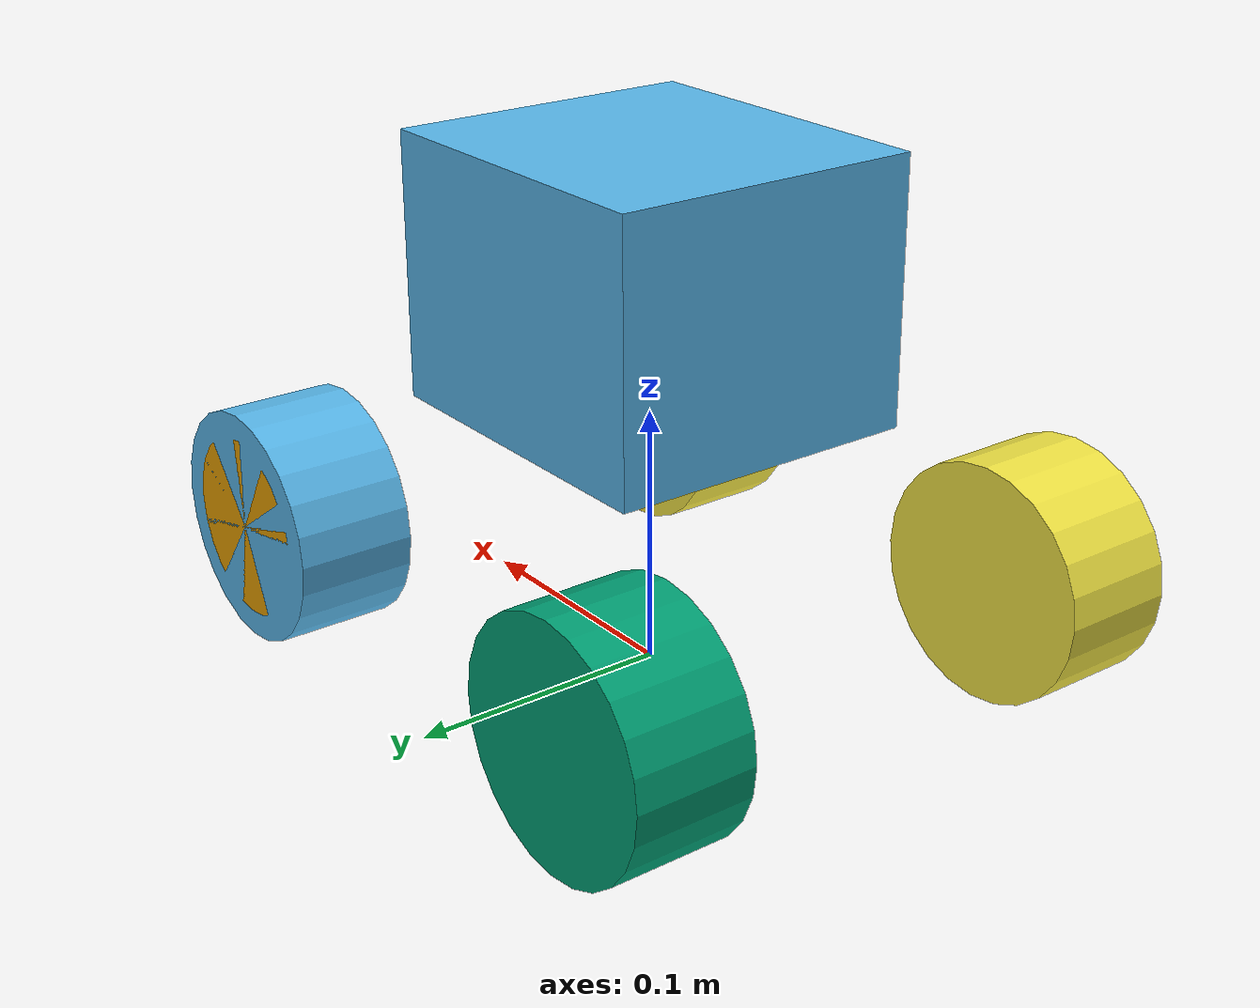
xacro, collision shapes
<?xml version="1.0"?>
<!--Auto: Zhui Li-->

<robot name="limo_ackerman" xmlns:xacro="http://www.ros.org/wiki/xacro">

    <!-- assoziiert mit anderen hergestellten Modellen -->
    <xacro:arg name="robot_namespace" default="/" />
    <xacro:include filename="$(find limo_gazebo_classic)/urdf/limo_anteil.xacro" />
    <xacro:include filename="$(find limo_gazebo_classic)/urdf/limo_steering_hinge.xacro" />

    <!-- definiert Value -->
    <xacro:property name="M_PI" value="3.14159"/>

    <xacro:property name="base_mass" value="2.1557"/>
    <xacro:property name="base_x_size" value="0.13" />
    <xacro:property name="base_y_size" value="0.12" />
    <xacro:property name="base_z_size" value="0.10" />

    <xacro:property name="wheelbase" value="0.2"/>
    <xacro:property name="track" value="0.14"/>
    <xacro:property name="wheel_vertical_offset" value="-0.100998" />

    <xacro:property name="wheel_mass" value="0.5" />
    <xacro:property name="wheel_length" value="0.045" />
    <xacro:property name="wheel_radius" value="0.045" />

    <!-- definieren die Macro-Function für die Rechnungen der Matrizen für Trägheitsmoment-->
    <!-- Kugel -->
    <xacro:macro name="sphere_inertial_matrix" params="m r">
        <inertial>
            <origin xyz="0.0 0.0 0.0" />
            <mass value="${m}" />
            <inertia ixx="${2*m*r*r/5}" ixy="0" ixz="0"
                     iyy="${2*m*r*r/5}" iyz="0"
                     izz="${2*m*r*r/5}" />
        </inertial>
    </xacro:macro>
    <!-- Zylinder -->
    <xacro:macro name="cylinder_inertial_matrix" params="m r h">
        <inertial>
            <origin xyz="0.0 0.0 0.0" />
            <mass value="${m}" />
            <inertia ixx="${m*(3*r*r+h*h)/12}" ixy = "0" ixz = "0"
                     iyy="${m*(3*r*r+h*h)/12}" iyz = "0"
                     izz="${m*r*r/2}" />
        </inertial>
    </xacro:macro>
    <!-- Quader -->
    <xacro:macro name="box_inertial_matrix" params="m w l h">
        <inertial>
            <origin xyz="0.0 0.0 0.0" />
            <mass value="${m}" />
            <inertia ixx="${m*(w*w+h*h)/12}" ixy = "0" ixz = "0"
                     iyy="${m*(h*h+l*l)/12}" iyz = "0"
                     izz="${m*(w*w+l*l)/12}" />
        </inertial>
    </xacro:macro>

    <!-- definiert ein Nullpunkt, um Modell aufzubauen. Es ist einfach für weitere Darstellungspostion in Simulation-Umgebung -->
    <link name="base_footprint"/>

    <joint name="base_joint" type="fixed">
        <parent link="base_footprint"/>
        <child link="base_link"/>
        <origin xyz="0.0 0.0 0.15" rpy="0 0 0"/>
    </joint>

    <!-- herstellt base_link als Karosserie -->
    <link name="base_link">
        <visual>
            <origin xyz="0 0 -0.15" rpy="0 0 1.57" />
            <geometry>
                <mesh filename="package://limo_gazebo_classic/meshes/limo_base.dae" scale="1 1 1"/>
            </geometry>
        </visual>
        <!-- Modell für physikalische Kollision zu modellieren. -->
        <collision>
            <origin xyz="0 0 0" rpy="0 0 0" />
            <geometry>
                <box size="${base_x_size} ${base_y_size} ${base_z_size}"/>
            </geometry>
        </collision>
        <xacro:box_inertial_matrix  m="${base_mass}" w="${base_x_size}" l="${base_y_size}" h="${base_z_size}" />
    </link>

<!--    &lt;!&ndash; mit macro-function renchnet die Trägheitsmoment &ndash;&gt;-->
<!--                     iyy="0.96" iyz="0"-->
<!--    &lt;!&ndash; verbindet link für Trägheitsmonent und Modell &ndash;&gt;-->

    <!--  Zwei hinten Räder werden anhand eines externen Modells erstellt und mit dem Körper verbunden-->
    <link name="hinten_left_wheel_link">
        <visual>
            <origin xyz="0 0 0" rpy="0 0 0" />
            <geometry>
                <mesh filename="package://limo_gazebo_classic/meshes/limo_wheel.dae" />
            </geometry>
        </visual>
        <collision>
            <origin xyz="0 ${wheel_length/2} 0" rpy="1.57 0 0" />
            <geometry>
                <cylinder length="${wheel_length}" radius="${wheel_radius}" />
            </geometry>
        </collision>
        <xacro:cylinder_inertial_matrix  m="${wheel_mass}" r="${wheel_radius}" h="${wheel_length}"/>
    </link>
    <joint name="hinten_left_wheel" type="continuous">
        <parent link="base_link"/>
        <child link="hinten_left_wheel_link"/>
        <origin xyz="${-wheelbase/2} ${track/2} ${wheel_vertical_offset}" rpy="0 0 0" />
        <axis xyz="0 1 0"/>
    </joint>

    <link name="hinten_right_wheel_link">
        <visual>
            <origin xyz="0 0 0" rpy="0 0 0" />
            <geometry>
                <mesh filename="package://limo_gazebo_classic/meshes/limo_wheel.dae" />
            </geometry>
        </visual>
        <collision>
            <origin xyz="0 ${wheel_length/2} 0" rpy="1.57 0 0" />
            <geometry>
                <cylinder length="${wheel_length}" radius="${wheel_radius}" />
            </geometry>
        </collision>
        <xacro:cylinder_inertial_matrix  m="${wheel_mass}" r="${wheel_radius}" h="${wheel_length}"/>
    </link>

    <joint name="hinten_right_wheel" type="continuous">
        <parent link="base_link"/>
        <child link="hinten_right_wheel_link"/>
        <origin xyz="${-wheelbase/2} ${-track/2} ${wheel_vertical_offset}" rpy="${M_PI} 0 0" />
        <axis xyz="0 -1 0"/>
    </joint>

    <!-- Instanziierung anderer Teile entsprechend den Makrofunktionen in "limo_anteil.xacro" -->
    <xacro:limo_laser parent_prefix="base_link" frame_prefix="laser">
        <origin xyz="0.103 0 -0.034" rpy="0 0 0"/>
    </xacro:limo_laser>

    <xacro:limo_depth_camera parent_prefix="base_link" frame_prefix="depth_camera">
        <origin xyz="0.084 0 0.03" rpy="0 0 0"/>
    </xacro:limo_depth_camera>

    <xacro:limo_imu parent_prefix="base_link" frame_prefix="imu">
        <origin xyz="0.0 0 -0.1" rpy="0 0 0"/>
    </xacro:limo_imu>

    <!-- ruft Steuerscharnier mit vorderem Räder auf -->
    <xacro:limo_left_steering_hinge parent_prefix="base_link" wheel_prefix="left_steering_hinge">
        <origin xyz="${wheelbase/2} ${track/2} ${wheel_vertical_offset}" rpy="0 0 0" />
    </xacro:limo_left_steering_hinge>

    <xacro:limo_right_steering_hinge parent_prefix="base_link" wheel_prefix="right_steering_hinge">
        <origin xyz="${wheelbase/2} ${-track/2} ${wheel_vertical_offset}" rpy="${M_PI} 0 0" />
    </xacro:limo_right_steering_hinge>
</robot>

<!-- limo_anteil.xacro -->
<!--Auto: Zhui Li-->

<robot name="limo_anteil" xmlns:xacro="http://www.ros.org/wiki/xacro">

    <xacro:macro name="limo_wheel" params="parent_prefix wheel_prefix reflect *joint_pose">
        <link name="${wheel_prefix}_wheel_link">
            <inertial>
                <origin xyz="0 0 0" />
                <mass value="0.5" />
                <inertia ixx="0.01055" ixy="0" ixz="0" iyy="0.00075" iyz="0" izz="0.01055" />
            </inertial>
            <visual>
                <origin xyz="0 0 0" rpy="0 0 0" />
                <geometry>
                    <mesh filename="package://limo_gazebo_classic/meshes/limo_wheel.dae" />
                </geometry>
            </visual>
            <collision>
              <origin xyz="0 ${wheel_length/2} 0" rpy="1.57 0 0" />
              <geometry>
                  <cylinder length="${wheel_length}" radius="${wheel_radius}" />
              </geometry>
            </collision>
        </link>

        <joint name="${wheel_prefix}_wheel" type="continuous">
            <parent link="${parent_prefix}"/>
            <child link="${wheel_prefix}_wheel_link"/>
            <xacro:insert_block name="joint_pose"/>
            <axis xyz="0 ${reflect*1} 0"/>
        </joint>
    </xacro:macro>

    <!-- Laser_Sensor -->
    <xacro:macro name="limo_laser" params="parent_prefix frame_prefix *joint_pose">
        <link name='${frame_prefix}_link'>
            <pose>0 0 0 0 0 0</pose>
            <inertial>
                <mass value="0.1"/>
                <origin xyz="0.0 0 0" rpy="0 0 0"/>
                <inertia
                    ixx="1e-6" ixy="0" ixz="0"
                    iyy="1e-6" iyz="0"
                    izz="1e-6"
                />
            </inertial>
            <visual name='laser_visual'>
                <origin xyz="0 0 0" rpy="0 0 0"/>
                <geometry>
                    <cylinder radius="0.02" length="0.01"/>
                </geometry>
                <material name='laser_material'>
                    <color rgba="0.75 0.75 0.75 1" />
                    <ambient>0.1 0.1 0.1 1</ambient>
                    <diffuse>0.1 0.1 0.2 1</diffuse>
                    <specular>0 0 0 0</specular>
                    <emissive>0 0 0 1</emissive>
                </material>
            </visual>
            <collision name='laser_collision'>
                <origin xyz="0 0 0" rpy="0 0 0"/>
                <geometry>
                    <cylinder radius="0.032" length="0.016"/>
                </geometry>
            </collision>
        </link>
        <joint type="fixed" name="laser_joint">
            <parent link="${parent_prefix}"/>
            <child link="${frame_prefix}_link"/>
            <xacro:insert_block name="joint_pose"/>
        </joint>
        <!-- definiert diesen Anteil gleiche Farbe in Gazebo -->
        <gazebo reference="${frame_prefix}_link">
            <material>Gazebo/Yellow</material>
        </gazebo>
    </xacro:macro>

    <!-- depth_camera -->
    <xacro:macro name="limo_depth_camera" params="parent_prefix frame_prefix *joint_pose">
        <link name='${frame_prefix}_link'>
            <pose>0 0 0 0 0 0</pose>
            <inertial>
                <mass value="0.1"/>
                <origin xyz="0.0 0 0" rpy="0 0 0"/>
                <inertia
                    ixx="1e-6" ixy="0" ixz="0"
                    iyy="1e-6" iyz="0"
                    izz="1e-6"
                />
            </inertial>
            <visual name='depth_camera_visual'>
                <origin xyz="0 0 0" rpy="0 0 0"/>
                <geometry>
                    <box size="0.02 0.06 0.015"/>
                </geometry>
                <material name='depth_camera_material'>
                    <color rgba="0.75 0.75 0.75 1" />
                    <ambient>0.1 0.1 0.1 1</ambient>
                    <diffuse>0.1 0.1 0.2 1</diffuse>
                    <specular>0 0 0 0</specular>
                    <emissive>0 0 0 1</emissive>
                </material>
            </visual>
            <collision name='depth_camera_collision'>
                <origin xyz="0 0 0" rpy="0 0 0"/>
                <geometry>
                    <box size="0.02 0.06 0.015"/>
                </geometry>
            </collision>
        </link>

        <joint type="fixed" name="depth_camera_joint">
            <xacro:insert_block name="joint_pose"/>
            <child link="${frame_prefix}_link"/>
            <parent link="${parent_prefix}"/>
        </joint>

        <link name="depth_link"></link>

        <joint name="${frame_prefix}_to_camera_joint" type="fixed">
            <origin xyz="0 0 0" rpy="${-M_PI/2} 0 ${-M_PI/2} "/>
            <parent link="${frame_prefix}_link"/>
            <child link="depth_link"/>
        </joint>

        <gazebo reference="${frame_prefix}_link">
            <material>Gazebo/Yellow</material>
        </gazebo>
    </xacro:macro>

    <!-- IMU-System(Hardware) -->
    <xacro:macro name="limo_imu" params="parent_prefix frame_prefix  *joint_pose">
        <link name='${frame_prefix}_link'>
            <pose>0 0 0 0 0 0</pose>
            <inertial>
                <mass value="0.01"/>
                <origin xyz="0.0 0 0" rpy="0 0 0"/>
                <inertia
                    ixx="1e-7" ixy="0" ixz="0"
                    iyy="1e-7" iyz="0"
                    izz="1e-7"
                />
            </inertial>
            <visual name='imu_visual'>
                <origin xyz="0 0 0" rpy="0 0 0"/>
                <geometry>
                    <box size="0.001 0.001 0.001"/>
                </geometry>
                <material name='imu_material'>
                    <color rgba="0.75 0.75 0.75 1" />
                    <ambient>0.1 0.1 0.1 1</ambient>
                    <diffuse>0.1 0.1 0.2 1</diffuse>
                    <specular>0 0 0 0</specular>
                    <emissive>0 0 0 1</emissive>
                </material>
            </visual>
            <collision name='imu_collision'>
                <origin xyz="0 0 0" rpy="0 0 0"/>
                <geometry>
                    <box size="0.001 0.001 0.001"/>
                </geometry>
            </collision>
        </link>
        <joint type="fixed" name="imu_joint">
            <xacro:insert_block name="joint_pose"/>
            <child link="${frame_prefix}_link"/>
            <parent link="${parent_prefix}"/>
        </joint>
        <gazebo reference="${frame_prefix}_link">
            <material>Gazebo/Yellow</material>
        </gazebo>
    </xacro:macro>
</robot>

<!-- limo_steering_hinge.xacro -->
<!--Auto: Zhui Li-->

<robot name="limo_steering_hinge" xmlns:xacro="http://www.ros.org/wiki/xacro">

    <xacro:macro name="limo_left_steering_hinge" params="parent_prefix wheel_prefix *joint_pose">
        <link name="${wheel_prefix}">
            <inertial>
                <!-- diese Daten kommen aus das Internet -->
                <mass value="0.25" />
                <inertia ixx="0.00525" ixy="0" ixz="0" iyy="0.00035" iyz="0" izz="0.00525" />
                <origin xyz="0 0 0" />
            </inertial>
            <visual>
                <origin xyz="0 0 0" rpy="0 0 0" />
                <geometry>
                    <!-- es ist sehr klein -->
                    <cylinder length="0.0001" radius="0.0001" />
                </geometry>
            </visual>
            <collision>
                <origin xyz="0 ${wheel_length/2} 0" rpy="1.57 0 0" />
                <geometry>
                    <cylinder length="${wheel_length}" radius="${wheel_radius-0.01}" />
                </geometry>
            </collision>
        </link>

        <joint name="${wheel_prefix}_wheel" type="revolute">
            <parent link="${parent_prefix}"/>
            <child link="${wheel_prefix}"/>
            <xacro:insert_block name="joint_pose"/>
            <axis xyz="0 0 1" />
            <limit lower="-0.523598767" upper="0.523598767" effort="5" velocity="0.5" />
            <dynamics damping="1.0" friction="2.0"/>
        </joint>

        <link name="front_left_wheel_link">
            <inertial>
                <mass value="0.25" />
                <inertia ixx="0.00525" ixy="0" ixz="0" iyy="0.00035" iyz="0" izz="0.00525" />
                <origin xyz="0 0 0" />
            </inertial>
            <visual>
                <origin xyz="0 0 0" rpy="0 0 0" />
                <geometry>
                    <mesh filename="package://limo_gazebo_classic/meshes/limo_wheel.dae" />
                </geometry>
            </visual>
            <collision>
                <origin xyz="0 ${wheel_length/2} 0" rpy="1.57 0 0" />
                <geometry>
                    <cylinder length="${wheel_length}" radius="${wheel_radius}" />
                </geometry>
            </collision>
        </link>

        <joint name="front_left_wheel" type="continuous">
            <parent link="${wheel_prefix}"/>
            <child link="front_left_wheel_link"/>
            <origin xyz="0 0 0" rpy="0 0 0" />
            <axis xyz="0 1 0"/>
        </joint>
    </xacro:macro>

    <xacro:macro name="limo_right_steering_hinge" params="parent_prefix wheel_prefix *joint_pose">
        <link name="${wheel_prefix}">
            <inertial>
                <mass value="0.25" />
                <inertia ixx="0.00525" ixy="0" ixz="0" iyy="0.00035" iyz="0" izz="0.00525" />
                <origin xyz="0 0 0" />
            </inertial>
            <visual>
                <origin xyz="0 0 0" rpy="0 0 0" />
                <geometry>
                    <cylinder length="0.0001" radius="0.0001" />
                </geometry>
            </visual>
            <collision>
              <origin xyz="0 ${wheel_length/2} 0" rpy="1.57 0 0" />
              <geometry>
                  <cylinder length="${wheel_length}" radius="${wheel_radius-0.01}" />
              </geometry>
            </collision>
        </link>

        <joint name="${wheel_prefix}_wheel" type="revolute">
            <parent link="${parent_prefix}"/>
            <child link="${wheel_prefix}"/>
            <xacro:insert_block name="joint_pose"/>
            <axis xyz="0 0 -1"/>
            <limit lower="-0.523598767" upper="0.523598767" effort="5" velocity="0.5" />
            <dynamics damping="1.0" friction="2.0"/>
        </joint>

        <link name="front_right_wheel_link">
            <inertial>
                <mass value="0.25" />
                <inertia ixx="0.00525" ixy="0" ixz="0" iyy="0.00035" iyz="0" izz="0.00525" />
                <origin xyz="0 0 0" />
            </inertial>
            <visual>
                <origin xyz="0 0 0" rpy="0 0 0" />
                <geometry>
                    <mesh filename="package://limo_gazebo_classic/meshes/limo_wheel.dae" />
                </geometry>
            </visual>
            <collision>
                <origin xyz="0 ${wheel_length/2} 0" rpy="1.57 0 0" />
                <geometry>
                    <cylinder length="${wheel_length}" radius="${wheel_radius}" />
                </geometry>
            </collision>
        </link>

        <joint name="front_right_wheel" type="continuous">
            <parent link="${wheel_prefix}"/>
            <child link="front_right_wheel_link"/>
            <origin xyz="0 0 0" rpy="0 0  0" />
            <axis xyz="0 -1 0"/>
        </joint>
    </xacro:macro>
</robot>
